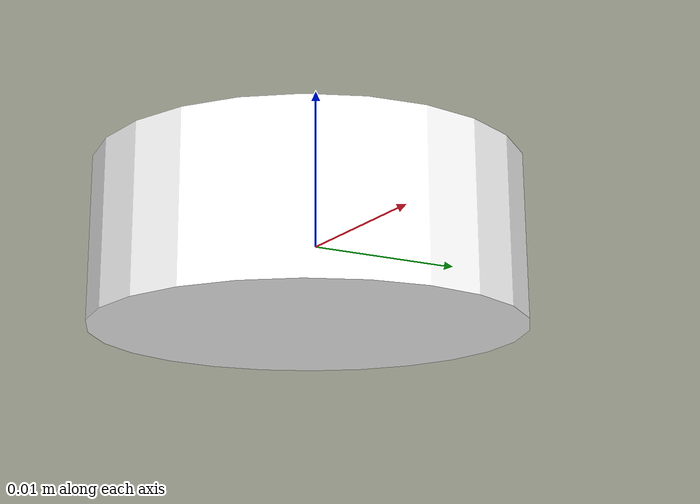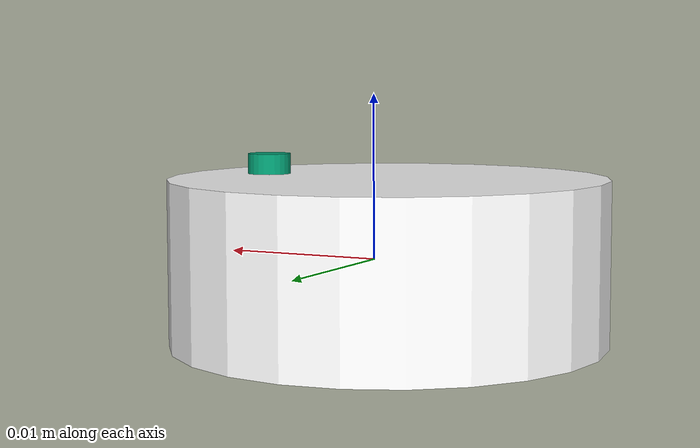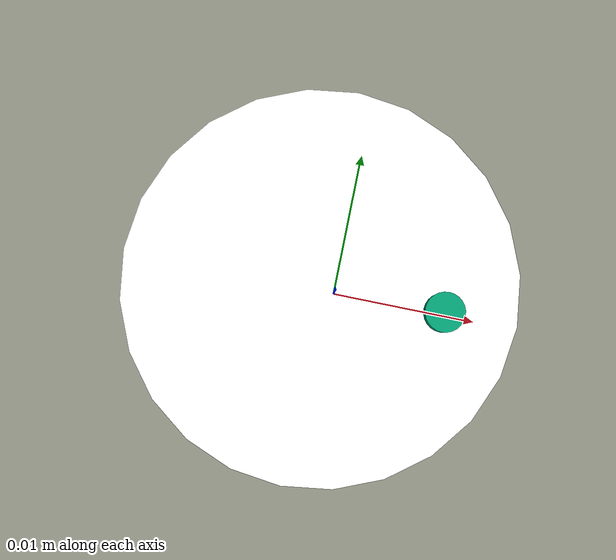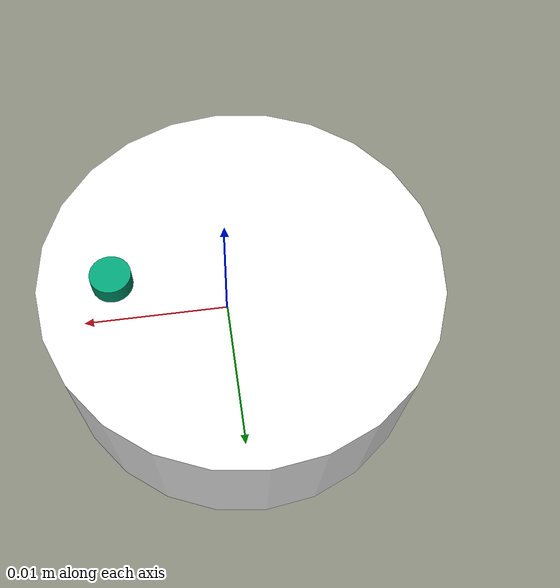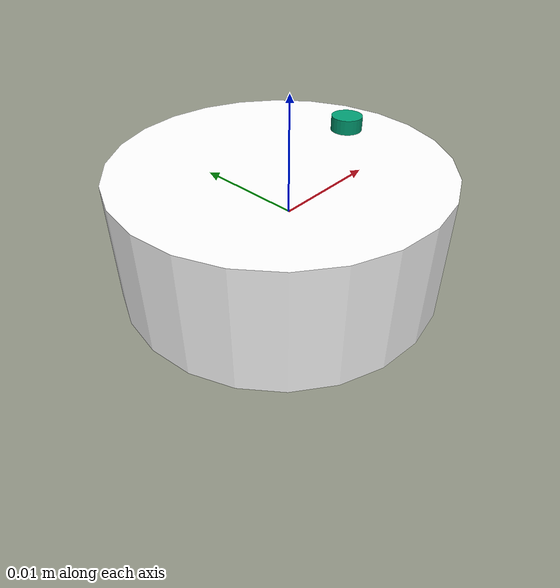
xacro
<?xml version="1.0"?>
<robot xmlns:xacro="http://www.ros.org/wiki/xacro" name="robot">

    <xacro:include filename="inertial_macros.xacro"/>

    <material name="white">
        <color rgba="1 1 1 1"/>
    </material>

    <material name="black">
        <color rgba="0 0 0 1"/>
    </material>

    <material name="green">
        <color rgba="0 1 0 1"/>
    </material>

    <!-- BASE Link -->

    <link name="base_link">

    </link>

    <!-- CHASSIS Link -->

    <joint name="chassis_joint" type="fixed">
        <parent link="base_link"/>
        <child link="chassis"/>
        <origin xyz="-0.001 0 0"/>
    </joint>

    <link name="chassis">
        <visual>
            <origin xyz="0.0 0 0"/>
            <geometry>
                <cylinder radius="0.0132291667" length="0.01"/>
            </geometry>
            <material name="white"/>
        </visual>
        <collision>
            <origin xyz="0.0 0 0"/>
            <geometry>
                <cylinder radius="0.0132291667" length="0.01"/>
            </geometry>
            <material name="white"/>
        </collision>
        <xacro:inertial_cylinder mass="0.1" length="0.01" radius="0.0132291667">
            <origin xyz="0 0 0" rpy="0 0 0"/>
        </xacro:inertial_cylinder>/
    </link>

    <!-- Front Indicator Link -->
    <joint name="front_indicator_joint" type="fixed">
        <parent link="chassis"/>
        <child link="front_indicator"/>
        <origin xyz="0.0082916667 0 0.005"/>
    </joint>

    <link name="front_indicator">
        <visual>
            <origin xyz=" 0 0 0"/>
            <geometry>
                <cylinder radius="0.0013229167" length="0.0025"/>
            </geometry>
        </visual>
          <collision>
            <origin xyz=" 0 0 0"/>
            <geometry>
                <cylinder radius="0.0013229167" length="0.0025"/>
            </geometry>
            <material name="green"/>
          </collision>
        <xacro:inertial_cylinder mass="0.1" length="0.0025" radius="0.0013229167">
            <origin xyz=" 0 0 0" rpy="0 0 0"/>
        </xacro:inertial_cylinder>/
    </link>
</robot>
